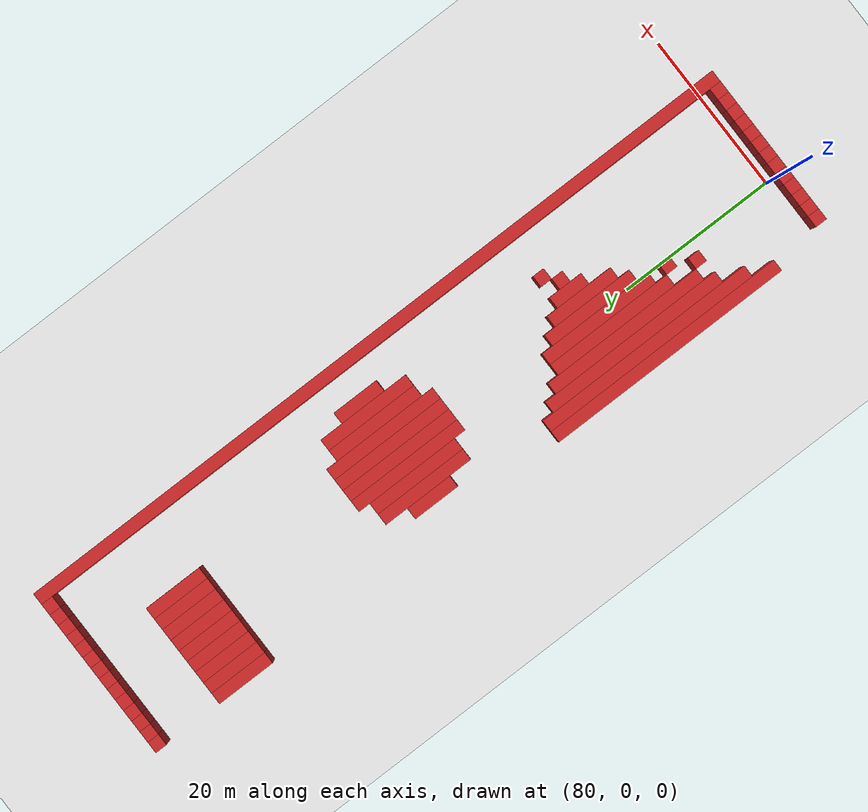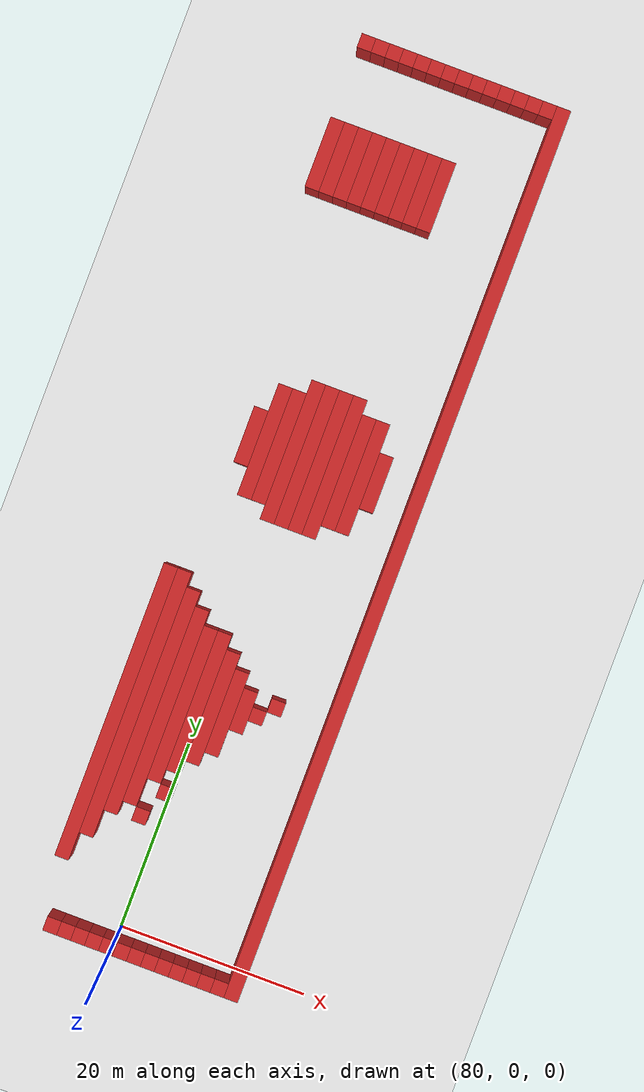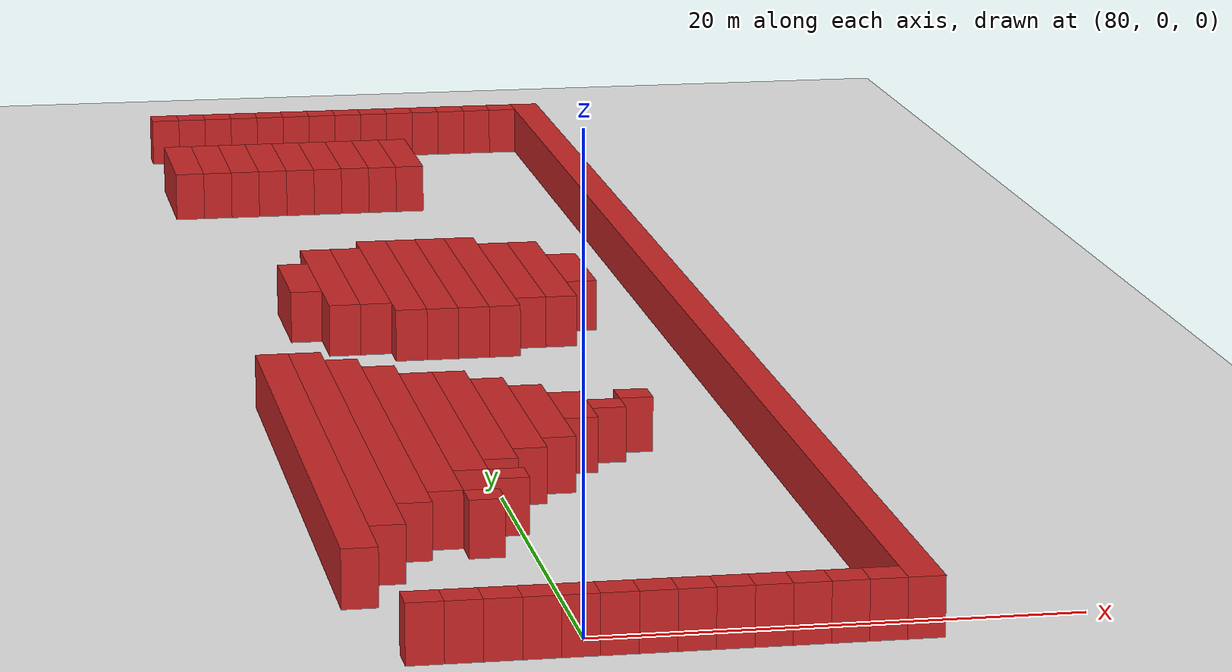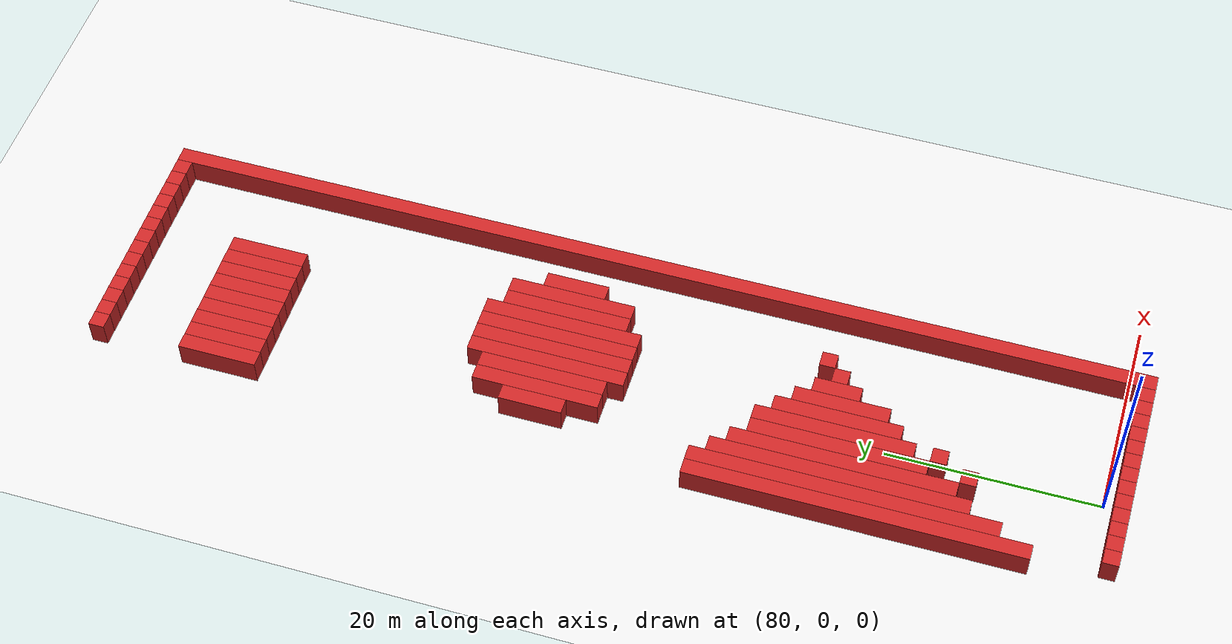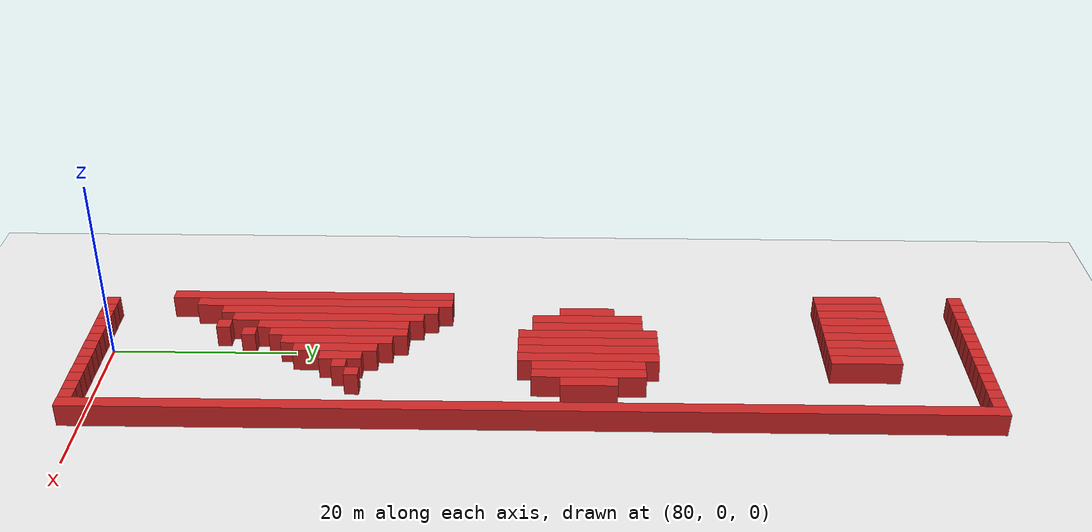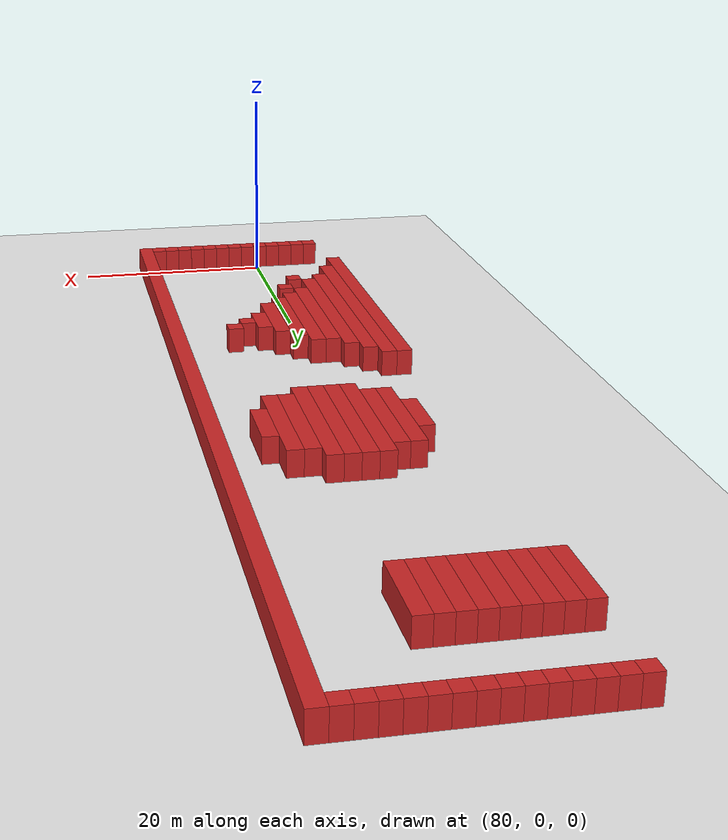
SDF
<sdf version="1.4">
 <world name="1_wall">
  <model name="ground_plane">
   <static>1</static>
   <link name="link">
    <collision name="collision">
     <geometry><plane><normal>0 0 1</normal><size>1000 1000</size></plane></geometry>
     <surface><friction><ode><mu>100</mu><mu2>50</mu2></ode></friction></surface>
    </collision>
    <visual name="visual">
     <cast_shadows>0</cast_shadows>
     <geometry><plane><normal>0 0 1</normal><size>10000 10000</size></plane></geometry>
     <material>
      <script><uri>file://media/materials/scripts/gazebo.material</uri><name>Gazebo/White</name></script>
     </material>
    </visual>
    <velocity_decay><linear>0</linear><angular>0</angular></velocity_decay>
   </link>
  </model>
  <model name="Wall_183">
   <static>1</static>
   <link name="Wall_183">
    <collision name="Wall_Collision_183">
     <geometry><box><size>31.5 1.5 2.5</size></box></geometry>
     <pose>0 0 1.25 0 -0 0</pose>
    </collision>
    <visual name="Wall_Visual_183">
     <pose>0 0 1.25 0 -0 0</pose>
     <geometry><box><size>31.5 1.5 2.5</size></box></geometry>
     <material>
      <script><uri>file://media/materials/scripts/gazebo.material</uri><name>Gazebo/Red</name></script>
     </material>
    </visual>
    <velocity_decay><linear>0</linear><angular>0</angular></velocity_decay>
    <pose>72.0 21.0 0 0 0 1.5707963267948966</pose>
   </link>
  </model>
  <model name="Wall_184">
   <static>1</static>
   <link name="Wall_184">
    <collision name="Wall_Collision_184">
     <geometry><box><size>7.5 1.5 2.5</size></box></geometry>
     <pose>0 0 1.25 0 -0 0</pose>
    </collision>
    <visual name="Wall_Visual_184">
     <pose>0 0 1.25 0 -0 0</pose>
     <geometry><box><size>7.5 1.5 2.5</size></box></geometry>
     <material>
      <script><uri>file://media/materials/scripts/gazebo.material</uri><name>Gazebo/Red</name></script>
     </material>
    </visual>
    <velocity_decay><linear>0</linear><angular>0</angular></velocity_decay>
    <pose>72.0 81.0 0 0 0 1.5707963267948966</pose>
   </link>
  </model>
  <model name="Wall_185">
   <static>1</static>
   <link name="Wall_185">
    <collision name="Wall_Collision_185">
     <geometry><box><size>1.5 1.5 2.5</size></box></geometry>
     <pose>0 0 1.25 0 -0 0</pose>
    </collision>
    <visual name="Wall_Visual_185">
     <pose>0 0 1.25 0 -0 0</pose>
     <geometry><box><size>1.5 1.5 2.5</size></box></geometry>
     <material>
      <script><uri>file://media/materials/scripts/gazebo.material</uri><name>Gazebo/Red</name></script>
     </material>
    </visual>
    <velocity_decay><linear>0</linear><angular>0</angular></velocity_decay>
    <pose>72.0 93.0 0 0 0 1.5707963267948966</pose>
   </link>
  </model>
  <model name="Wall_186">
   <static>1</static>
   <link name="Wall_186">
    <collision name="Wall_Collision_186">
     <geometry><box><size>1.5 1.5 2.5</size></box></geometry>
     <pose>0 0 1.25 0 -0 0</pose>
    </collision>
    <visual name="Wall_Visual_186">
     <pose>0 0 1.25 0 -0 0</pose>
     <geometry><box><size>1.5 1.5 2.5</size></box></geometry>
     <material>
      <script><uri>file://media/materials/scripts/gazebo.material</uri><name>Gazebo/Red</name></script>
     </material>
    </visual>
    <velocity_decay><linear>0</linear><angular>0</angular></velocity_decay>
    <pose>73.5 -1.5 0 0 0 1.5707963267948966</pose>
   </link>
  </model>
  <model name="Wall_187">
   <static>1</static>
   <link name="Wall_187">
    <collision name="Wall_Collision_187">
     <geometry><box><size>28.5 1.5 2.5</size></box></geometry>
     <pose>0 0 1.25 0 -0 0</pose>
    </collision>
    <visual name="Wall_Visual_187">
     <pose>0 0 1.25 0 -0 0</pose>
     <geometry><box><size>28.5 1.5 2.5</size></box></geometry>
     <material>
      <script><uri>file://media/materials/scripts/gazebo.material</uri><name>Gazebo/Red</name></script>
     </material>
    </visual>
    <velocity_decay><linear>0</linear><angular>0</angular></velocity_decay>
    <pose>73.5 22.5 0 0 0 1.5707963267948966</pose>
   </link>
  </model>
  <model name="Wall_188">
   <static>1</static>
   <link name="Wall_188">
    <collision name="Wall_Collision_188">
     <geometry><box><size>7.5 1.5 2.5</size></box></geometry>
     <pose>0 0 1.25 0 -0 0</pose>
    </collision>
    <visual name="Wall_Visual_188">
     <pose>0 0 1.25 0 -0 0</pose>
     <geometry><box><size>7.5 1.5 2.5</size></box></geometry>
     <material>
      <script><uri>file://media/materials/scripts/gazebo.material</uri><name>Gazebo/Red</name></script>
     </material>
    </visual>
    <velocity_decay><linear>0</linear><angular>0</angular></velocity_decay>
    <pose>73.5 81.0 0 0 0 1.5707963267948966</pose>
   </link>
  </model>
  <model name="Wall_189">
   <static>1</static>
   <link name="Wall_189">
    <collision name="Wall_Collision_189">
     <geometry><box><size>1.5 1.5 2.5</size></box></geometry>
     <pose>0 0 1.25 0 -0 0</pose>
    </collision>
    <visual name="Wall_Visual_189">
     <pose>0 0 1.25 0 -0 0</pose>
     <geometry><box><size>1.5 1.5 2.5</size></box></geometry>
     <material>
      <script><uri>file://media/materials/scripts/gazebo.material</uri><name>Gazebo/Red</name></script>
     </material>
    </visual>
    <velocity_decay><linear>0</linear><angular>0</angular></velocity_decay>
    <pose>73.5 93.0 0 0 0 1.5707963267948966</pose>
   </link>
  </model>
  <model name="Wall_190">
   <static>1</static>
   <link name="Wall_190">
    <collision name="Wall_Collision_190">
     <geometry><box><size>1.5 1.5 2.5</size></box></geometry>
     <pose>0 0 1.25 0 -0 0</pose>
    </collision>
    <visual name="Wall_Visual_190">
     <pose>0 0 1.25 0 -0 0</pose>
     <geometry><box><size>1.5 1.5 2.5</size></box></geometry>
     <material>
      <script><uri>file://media/materials/scripts/gazebo.material</uri><name>Gazebo/Red</name></script>
     </material>
    </visual>
    <velocity_decay><linear>0</linear><angular>0</angular></velocity_decay>
    <pose>75.0 -1.5 0 0 0 1.5707963267948966</pose>
   </link>
  </model>
  <model name="Wall_191">
   <static>1</static>
   <link name="Wall_191">
    <collision name="Wall_Collision_191">
     <geometry><box><size>24.0 1.5 2.5</size></box></geometry>
     <pose>0 0 1.25 0 -0 0</pose>
    </collision>
    <visual name="Wall_Visual_191">
     <pose>0 0 1.25 0 -0 0</pose>
     <geometry><box><size>24.0 1.5 2.5</size></box></geometry>
     <material>
      <script><uri>file://media/materials/scripts/gazebo.material</uri><name>Gazebo/Red</name></script>
     </material>
    </visual>
    <velocity_decay><linear>0</linear><angular>0</angular></velocity_decay>
    <pose>75.0 23.25 0 0 0 1.5707963267948966</pose>
   </link>
  </model>
  <model name="Wall_192">
   <static>1</static>
   <link name="Wall_192">
    <collision name="Wall_Collision_192">
     <geometry><box><size>6.0 1.5 2.5</size></box></geometry>
     <pose>0 0 1.25 0 -0 0</pose>
    </collision>
    <visual name="Wall_Visual_192">
     <pose>0 0 1.25 0 -0 0</pose>
     <geometry><box><size>6.0 1.5 2.5</size></box></geometry>
     <material>
      <script><uri>file://media/materials/scripts/gazebo.material</uri><name>Gazebo/Red</name></script>
     </material>
    </visual>
    <velocity_decay><linear>0</linear><angular>0</angular></velocity_decay>
    <pose>75.0 51.75 0 0 0 1.5707963267948966</pose>
   </link>
  </model>
  <model name="Wall_193">
   <static>1</static>
   <link name="Wall_193">
    <collision name="Wall_Collision_193">
     <geometry><box><size>7.5 1.5 2.5</size></box></geometry>
     <pose>0 0 1.25 0 -0 0</pose>
    </collision>
    <visual name="Wall_Visual_193">
     <pose>0 0 1.25 0 -0 0</pose>
     <geometry><box><size>7.5 1.5 2.5</size></box></geometry>
     <material>
      <script><uri>file://media/materials/scripts/gazebo.material</uri><name>Gazebo/Red</name></script>
     </material>
    </visual>
    <velocity_decay><linear>0</linear><angular>0</angular></velocity_decay>
    <pose>75.0 81.0 0 0 0 1.5707963267948966</pose>
   </link>
  </model>
  <model name="Wall_194">
   <static>1</static>
   <link name="Wall_194">
    <collision name="Wall_Collision_194">
     <geometry><box><size>1.5 1.5 2.5</size></box></geometry>
     <pose>0 0 1.25 0 -0 0</pose>
    </collision>
    <visual name="Wall_Visual_194">
     <pose>0 0 1.25 0 -0 0</pose>
     <geometry><box><size>1.5 1.5 2.5</size></box></geometry>
     <material>
      <script><uri>file://media/materials/scripts/gazebo.material</uri><name>Gazebo/Red</name></script>
     </material>
    </visual>
    <velocity_decay><linear>0</linear><angular>0</angular></velocity_decay>
    <pose>75.0 93.0 0 0 0 1.5707963267948966</pose>
   </link>
  </model>
  <model name="Wall_195">
   <static>1</static>
   <link name="Wall_195">
    <collision name="Wall_Collision_195">
     <geometry><box><size>1.5 1.5 2.5</size></box></geometry>
     <pose>0 0 1.25 0 -0 0</pose>
    </collision>
    <visual name="Wall_Visual_195">
     <pose>0 0 1.25 0 -0 0</pose>
     <geometry><box><size>1.5 1.5 2.5</size></box></geometry>
     <material>
      <script><uri>file://media/materials/scripts/gazebo.material</uri><name>Gazebo/Red</name></script>
     </material>
    </visual>
    <velocity_decay><linear>0</linear><angular>0</angular></velocity_decay>
    <pose>76.5 -1.5 0 0 0 1.5707963267948966</pose>
   </link>
  </model>
  <model name="Wall_196">
   <static>1</static>
   <link name="Wall_196">
    <collision name="Wall_Collision_196">
     <geometry><box><size>21.0 1.5 2.5</size></box></geometry>
     <pose>0 0 1.25 0 -0 0</pose>
    </collision>
    <visual name="Wall_Visual_196">
     <pose>0 0 1.25 0 -0 0</pose>
     <geometry><box><size>21.0 1.5 2.5</size></box></geometry>
     <material>
      <script><uri>file://media/materials/scripts/gazebo.material</uri><name>Gazebo/Red</name></script>
     </material>
    </visual>
    <velocity_decay><linear>0</linear><angular>0</angular></velocity_decay>
    <pose>76.5 23.25 0 0 0 1.5707963267948966</pose>
   </link>
  </model>
  <model name="Wall_197">
   <static>1</static>
   <link name="Wall_197">
    <collision name="Wall_Collision_197">
     <geometry><box><size>12.0 1.5 2.5</size></box></geometry>
     <pose>0 0 1.25 0 -0 0</pose>
    </collision>
    <visual name="Wall_Visual_197">
     <pose>0 0 1.25 0 -0 0</pose>
     <geometry><box><size>12.0 1.5 2.5</size></box></geometry>
     <material>
      <script><uri>file://media/materials/scripts/gazebo.material</uri><name>Gazebo/Red</name></script>
     </material>
    </visual>
    <velocity_decay><linear>0</linear><angular>0</angular></velocity_decay>
    <pose>76.5 51.75 0 0 0 1.5707963267948966</pose>
   </link>
  </model>
  <model name="Wall_198">
   <static>1</static>
   <link name="Wall_198">
    <collision name="Wall_Collision_198">
     <geometry><box><size>7.5 1.5 2.5</size></box></geometry>
     <pose>0 0 1.25 0 -0 0</pose>
    </collision>
    <visual name="Wall_Visual_198">
     <pose>0 0 1.25 0 -0 0</pose>
     <geometry><box><size>7.5 1.5 2.5</size></box></geometry>
     <material>
      <script><uri>file://media/materials/scripts/gazebo.material</uri><name>Gazebo/Red</name></script>
     </material>
    </visual>
    <velocity_decay><linear>0</linear><angular>0</angular></velocity_decay>
    <pose>76.5 81.0 0 0 0 1.5707963267948966</pose>
   </link>
  </model>
  <model name="Wall_199">
   <static>1</static>
   <link name="Wall_199">
    <collision name="Wall_Collision_199">
     <geometry><box><size>1.5 1.5 2.5</size></box></geometry>
     <pose>0 0 1.25 0 -0 0</pose>
    </collision>
    <visual name="Wall_Visual_199">
     <pose>0 0 1.25 0 -0 0</pose>
     <geometry><box><size>1.5 1.5 2.5</size></box></geometry>
     <material>
      <script><uri>file://media/materials/scripts/gazebo.material</uri><name>Gazebo/Red</name></script>
     </material>
    </visual>
    <velocity_decay><linear>0</linear><angular>0</angular></velocity_decay>
    <pose>76.5 93.0 0 0 0 1.5707963267948966</pose>
   </link>
  </model>
  <model name="Wall_200">
   <static>1</static>
   <link name="Wall_200">
    <collision name="Wall_Collision_200">
     <geometry><box><size>1.5 1.5 2.5</size></box></geometry>
     <pose>0 0 1.25 0 -0 0</pose>
    </collision>
    <visual name="Wall_Visual_200">
     <pose>0 0 1.25 0 -0 0</pose>
     <geometry><box><size>1.5 1.5 2.5</size></box></geometry>
     <material>
      <script><uri>file://media/materials/scripts/gazebo.material</uri><name>Gazebo/Red</name></script>
     </material>
    </visual>
    <velocity_decay><linear>0</linear><angular>0</angular></velocity_decay>
    <pose>78.0 -1.5 0 0 0 1.5707963267948966</pose>
   </link>
  </model>
  <model name="Wall_201">
   <static>1</static>
   <link name="Wall_201">
    <collision name="Wall_Collision_201">
     <geometry><box><size>1.5 1.5 2.5</size></box></geometry>
     <pose>0 0 1.25 0 -0 0</pose>
    </collision>
    <visual name="Wall_Visual_201">
     <pose>0 0 1.25 0 -0 0</pose>
     <geometry><box><size>1.5 1.5 2.5</size></box></geometry>
     <material>
      <script><uri>file://media/materials/scripts/gazebo.material</uri><name>Gazebo/Red</name></script>
     </material>
    </visual>
    <velocity_decay><linear>0</linear><angular>0</angular></velocity_decay>
    <pose>78.0 12.0 0 0 0 1.5707963267948966</pose>
   </link>
  </model>
  <model name="Wall_202">
   <static>1</static>
   <link name="Wall_202">
    <collision name="Wall_Collision_202">
     <geometry><box><size>16.5 1.5 2.5</size></box></geometry>
     <pose>0 0 1.25 0 -0 0</pose>
    </collision>
    <visual name="Wall_Visual_202">
     <pose>0 0 1.25 0 -0 0</pose>
     <geometry><box><size>16.5 1.5 2.5</size></box></geometry>
     <material>
      <script><uri>file://media/materials/scripts/gazebo.material</uri><name>Gazebo/Red</name></script>
     </material>
    </visual>
    <velocity_decay><linear>0</linear><angular>0</angular></velocity_decay>
    <pose>78.0 24.0 0 0 0 1.5707963267948966</pose>
   </link>
  </model>
  <model name="Wall_203">
   <static>1</static>
   <link name="Wall_203">
    <collision name="Wall_Collision_203">
     <geometry><box><size>12.0 1.5 2.5</size></box></geometry>
     <pose>0 0 1.25 0 -0 0</pose>
    </collision>
    <visual name="Wall_Visual_203">
     <pose>0 0 1.25 0 -0 0</pose>
     <geometry><box><size>12.0 1.5 2.5</size></box></geometry>
     <material>
      <script><uri>file://media/materials/scripts/gazebo.material</uri><name>Gazebo/Red</name></script>
     </material>
    </visual>
    <velocity_decay><linear>0</linear><angular>0</angular></velocity_decay>
    <pose>78.0 51.75 0 0 0 1.5707963267948966</pose>
   </link>
  </model>
  <model name="Wall_204">
   <static>1</static>
   <link name="Wall_204">
    <collision name="Wall_Collision_204">
     <geometry><box><size>7.5 1.5 2.5</size></box></geometry>
     <pose>0 0 1.25 0 -0 0</pose>
    </collision>
    <visual name="Wall_Visual_204">
     <pose>0 0 1.25 0 -0 0</pose>
     <geometry><box><size>7.5 1.5 2.5</size></box></geometry>
     <material>
      <script><uri>file://media/materials/scripts/gazebo.material</uri><name>Gazebo/Red</name></script>
     </material>
    </visual>
    <velocity_decay><linear>0</linear><angular>0</angular></velocity_decay>
    <pose>78.0 81.0 0 0 0 1.5707963267948966</pose>
   </link>
  </model>
  <model name="Wall_205">
   <static>1</static>
   <link name="Wall_205">
    <collision name="Wall_Collision_205">
     <geometry><box><size>1.5 1.5 2.5</size></box></geometry>
     <pose>0 0 1.25 0 -0 0</pose>
    </collision>
    <visual name="Wall_Visual_205">
     <pose>0 0 1.25 0 -0 0</pose>
     <geometry><box><size>1.5 1.5 2.5</size></box></geometry>
     <material>
      <script><uri>file://media/materials/scripts/gazebo.material</uri><name>Gazebo/Red</name></script>
     </material>
    </visual>
    <velocity_decay><linear>0</linear><angular>0</angular></velocity_decay>
    <pose>78.0 93.0 0 0 0 1.5707963267948966</pose>
   </link>
  </model>
  <model name="Wall_206">
   <static>1</static>
   <link name="Wall_206">
    <collision name="Wall_Collision_206">
     <geometry><box><size>1.5 1.5 2.5</size></box></geometry>
     <pose>0 0 1.25 0 -0 0</pose>
    </collision>
    <visual name="Wall_Visual_206">
     <pose>0 0 1.25 0 -0 0</pose>
     <geometry><box><size>1.5 1.5 2.5</size></box></geometry>
     <material>
      <script><uri>file://media/materials/scripts/gazebo.material</uri><name>Gazebo/Red</name></script>
     </material>
    </visual>
    <velocity_decay><linear>0</linear><angular>0</angular></velocity_decay>
    <pose>79.5 -1.5 0 0 0 1.5707963267948966</pose>
   </link>
  </model>
  <model name="Wall_207">
   <static>1</static>
   <link name="Wall_207">
    <collision name="Wall_Collision_207">
     <geometry><box><size>1.5 1.5 2.5</size></box></geometry>
     <pose>0 0 1.25 0 -0 0</pose>
    </collision>
    <visual name="Wall_Visual_207">
     <pose>0 0 1.25 0 -0 0</pose>
     <geometry><box><size>1.5 1.5 2.5</size></box></geometry>
     <material>
      <script><uri>file://media/materials/scripts/gazebo.material</uri><name>Gazebo/Red</name></script>
     </material>
    </visual>
    <velocity_decay><linear>0</linear><angular>0</angular></velocity_decay>
    <pose>79.5 15.0 0 0 0 1.5707963267948966</pose>
   </link>
  </model>
  <model name="Wall_208">
   <static>1</static>
   <link name="Wall_208">
    <collision name="Wall_Collision_208">
     <geometry><box><size>15.0 1.5 2.5</size></box></geometry>
     <pose>0 0 1.25 0 -0 0</pose>
    </collision>
    <visual name="Wall_Visual_208">
     <pose>0 0 1.25 0 -0 0</pose>
     <geometry><box><size>15.0 1.5 2.5</size></box></geometry>
     <material>
      <script><uri>file://media/materials/scripts/gazebo.material</uri><name>Gazebo/Red</name></script>
     </material>
    </visual>
    <velocity_decay><linear>0</linear><angular>0</angular></velocity_decay>
    <pose>79.5 24.75 0 0 0 1.5707963267948966</pose>
   </link>
  </model>
  <model name="Wall_209">
   <static>1</static>
   <link name="Wall_209">
    <collision name="Wall_Collision_209">
     <geometry><box><size>15.0 1.5 2.5</size></box></geometry>
     <pose>0 0 1.25 0 -0 0</pose>
    </collision>
    <visual name="Wall_Visual_209">
     <pose>0 0 1.25 0 -0 0</pose>
     <geometry><box><size>15.0 1.5 2.5</size></box></geometry>
     <material>
      <script><uri>file://media/materials/scripts/gazebo.material</uri><name>Gazebo/Red</name></script>
     </material>
    </visual>
    <velocity_decay><linear>0</linear><angular>0</angular></velocity_decay>
    <pose>79.5 51.75 0 0 0 1.5707963267948966</pose>
   </link>
  </model>
  <model name="Wall_210">
   <static>1</static>
   <link name="Wall_210">
    <collision name="Wall_Collision_210">
     <geometry><box><size>7.5 1.5 2.5</size></box></geometry>
     <pose>0 0 1.25 0 -0 0</pose>
    </collision>
    <visual name="Wall_Visual_210">
     <pose>0 0 1.25 0 -0 0</pose>
     <geometry><box><size>7.5 1.5 2.5</size></box></geometry>
     <material>
      <script><uri>file://media/materials/scripts/gazebo.material</uri><name>Gazebo/Red</name></script>
     </material>
    </visual>
    <velocity_decay><linear>0</linear><angular>0</angular></velocity_decay>
    <pose>79.5 81.0 0 0 0 1.5707963267948966</pose>
   </link>
  </model>
  <model name="Wall_211">
   <static>1</static>
   <link name="Wall_211">
    <collision name="Wall_Collision_211">
     <geometry><box><size>1.5 1.5 2.5</size></box></geometry>
     <pose>0 0 1.25 0 -0 0</pose>
    </collision>
    <visual name="Wall_Visual_211">
     <pose>0 0 1.25 0 -0 0</pose>
     <geometry><box><size>1.5 1.5 2.5</size></box></geometry>
     <material>
      <script><uri>file://media/materials/scripts/gazebo.material</uri><name>Gazebo/Red</name></script>
     </material>
    </visual>
    <velocity_decay><linear>0</linear><angular>0</angular></velocity_decay>
    <pose>79.5 93.0 0 0 0 1.5707963267948966</pose>
   </link>
  </model>
  <model name="Wall_212">
   <static>1</static>
   <link name="Wall_212">
    <collision name="Wall_Collision_212">
     <geometry><box><size>1.5 1.5 2.5</size></box></geometry>
     <pose>0 0 1.25 0 -0 0</pose>
    </collision>
    <visual name="Wall_Visual_212">
     <pose>0 0 1.25 0 -0 0</pose>
     <geometry><box><size>1.5 1.5 2.5</size></box></geometry>
     <material>
      <script><uri>file://media/materials/scripts/gazebo.material</uri><name>Gazebo/Red</name></script>
     </material>
    </visual>
    <velocity_decay><linear>0</linear><angular>0</angular></velocity_decay>
    <pose>81.0 -1.5 0 0 0 1.5707963267948966</pose>
   </link>
  </model>
  <model name="Wall_213">
   <static>1</static>
   <link name="Wall_213">
    <collision name="Wall_Collision_213">
     <geometry><box><size>12.0 1.5 2.5</size></box></geometry>
     <pose>0 0 1.25 0 -0 0</pose>
    </collision>
    <visual name="Wall_Visual_213">
     <pose>0 0 1.25 0 -0 0</pose>
     <geometry><box><size>12.0 1.5 2.5</size></box></geometry>
     <material>
      <script><uri>file://media/materials/scripts/gazebo.material</uri><name>Gazebo/Red</name></script>
     </material>
    </visual>
    <velocity_decay><linear>0</linear><angular>0</angular></velocity_decay>
    <pose>81.0 24.75 0 0 0 1.5707963267948966</pose>
   </link>
  </model>
  <model name="Wall_214">
   <static>1</static>
   <link name="Wall_214">
    <collision name="Wall_Collision_214">
     <geometry><box><size>15.0 1.5 2.5</size></box></geometry>
     <pose>0 0 1.25 0 -0 0</pose>
    </collision>
    <visual name="Wall_Visual_214">
     <pose>0 0 1.25 0 -0 0</pose>
     <geometry><box><size>15.0 1.5 2.5</size></box></geometry>
     <material>
      <script><uri>file://media/materials/scripts/gazebo.material</uri><name>Gazebo/Red</name></script>
     </material>
    </visual>
    <velocity_decay><linear>0</linear><angular>0</angular></velocity_decay>
    <pose>81.0 51.75 0 0 0 1.5707963267948966</pose>
   </link>
  </model>
  <model name="Wall_215">
   <static>1</static>
   <link name="Wall_215">
    <collision name="Wall_Collision_215">
     <geometry><box><size>7.5 1.5 2.5</size></box></geometry>
     <pose>0 0 1.25 0 -0 0</pose>
    </collision>
    <visual name="Wall_Visual_215">
     <pose>0 0 1.25 0 -0 0</pose>
     <geometry><box><size>7.5 1.5 2.5</size></box></geometry>
     <material>
      <script><uri>file://media/materials/scripts/gazebo.material</uri><name>Gazebo/Red</name></script>
     </material>
    </visual>
    <velocity_decay><linear>0</linear><angular>0</angular></velocity_decay>
    <pose>81.0 81.0 0 0 0 1.5707963267948966</pose>
   </link>
  </model>
  <model name="Wall_216">
   <static>1</static>
   <link name="Wall_216">
    <collision name="Wall_Collision_216">
     <geometry><box><size>1.5 1.5 2.5</size></box></geometry>
     <pose>0 0 1.25 0 -0 0</pose>
    </collision>
    <visual name="Wall_Visual_216">
     <pose>0 0 1.25 0 -0 0</pose>
     <geometry><box><size>1.5 1.5 2.5</size></box></geometry>
     <material>
      <script><uri>file://media/materials/scripts/gazebo.material</uri><name>Gazebo/Red</name></script>
     </material>
    </visual>
    <velocity_decay><linear>0</linear><angular>0</angular></velocity_decay>
    <pose>81.0 93.0 0 0 0 1.5707963267948966</pose>
   </link>
  </model>
  <model name="Wall_217">
   <static>1</static>
   <link name="Wall_217">
    <collision name="Wall_Collision_217">
     <geometry><box><size>1.5 1.5 2.5</size></box></geometry>
     <pose>0 0 1.25 0 -0 0</pose>
    </collision>
    <visual name="Wall_Visual_217">
     <pose>0 0 1.25 0 -0 0</pose>
     <geometry><box><size>1.5 1.5 2.5</size></box></geometry>
     <material>
      <script><uri>file://media/materials/scripts/gazebo.material</uri><name>Gazebo/Red</name></script>
     </material>
    </visual>
    <velocity_decay><linear>0</linear><angular>0</angular></velocity_decay>
    <pose>82.5 -1.5 0 0 0 1.5707963267948966</pose>
   </link>
  </model>
  <model name="Wall_218">
   <static>1</static>
   <link name="Wall_218">
    <collision name="Wall_Collision_218">
     <geometry><box><size>9.0 1.5 2.5</size></box></geometry>
     <pose>0 0 1.25 0 -0 0</pose>
    </collision>
    <visual name="Wall_Visual_218">
     <pose>0 0 1.25 0 -0 0</pose>
     <geometry><box><size>9.0 1.5 2.5</size></box></geometry>
     <material>
      <script><uri>file://media/materials/scripts/gazebo.material</uri><name>Gazebo/Red</name></script>
     </material>
    </visual>
    <velocity_decay><linear>0</linear><angular>0</angular></velocity_decay>
    <pose>82.5 24.75 0 0 0 1.5707963267948966</pose>
   </link>
  </model>
  <model name="Wall_219">
   <static>1</static>
   <link name="Wall_219">
    <collision name="Wall_Collision_219">
     <geometry><box><size>15.0 1.5 2.5</size></box></geometry>
     <pose>0 0 1.25 0 -0 0</pose>
    </collision>
    <visual name="Wall_Visual_219">
     <pose>0 0 1.25 0 -0 0</pose>
     <geometry><box><size>15.0 1.5 2.5</size></box></geometry>
     <material>
      <script><uri>file://media/materials/scripts/gazebo.material</uri><name>Gazebo/Red</name></script>
     </material>
    </visual>
    <velocity_decay><linear>0</linear><angular>0</angular></velocity_decay>
    <pose>82.5 51.75 0 0 0 1.5707963267948966</pose>
   </link>
  </model>
  <model name="Wall_220">
   <static>1</static>
   <link name="Wall_220">
    <collision name="Wall_Collision_220">
     <geometry><box><size>7.5 1.5 2.5</size></box></geometry>
     <pose>0 0 1.25 0 -0 0</pose>
    </collision>
    <visual name="Wall_Visual_220">
     <pose>0 0 1.25 0 -0 0</pose>
     <geometry><box><size>7.5 1.5 2.5</size></box></geometry>
     <material>
      <script><uri>file://media/materials/scripts/gazebo.material</uri><name>Gazebo/Red</name></script>
     </material>
    </visual>
    <velocity_decay><linear>0</linear><angular>0</angular></velocity_decay>
    <pose>82.5 81.0 0 0 0 1.5707963267948966</pose>
   </link>
  </model>
  <model name="Wall_221">
   <static>1</static>
   <link name="Wall_221">
    <collision name="Wall_Collision_221">
     <geometry><box><size>1.5 1.5 2.5</size></box></geometry>
     <pose>0 0 1.25 0 -0 0</pose>
    </collision>
    <visual name="Wall_Visual_221">
     <pose>0 0 1.25 0 -0 0</pose>
     <geometry><box><size>1.5 1.5 2.5</size></box></geometry>
     <material>
      <script><uri>file://media/materials/scripts/gazebo.material</uri><name>Gazebo/Red</name></script>
     </material>
    </visual>
    <velocity_decay><linear>0</linear><angular>0</angular></velocity_decay>
    <pose>82.5 93.0 0 0 0 1.5707963267948966</pose>
   </link>
  </model>
  <model name="Wall_222">
   <static>1</static>
   <link name="Wall_222">
    <collision name="Wall_Collision_222">
     <geometry><box><size>1.5 1.5 2.5</size></box></geometry>
     <pose>0 0 1.25 0 -0 0</pose>
    </collision>
    <visual name="Wall_Visual_222">
     <pose>0 0 1.25 0 -0 0</pose>
     <geometry><box><size>1.5 1.5 2.5</size></box></geometry>
     <material>
      <script><uri>file://media/materials/scripts/gazebo.material</uri><name>Gazebo/Red</name></script>
     </material>
    </visual>
    <velocity_decay><linear>0</linear><angular>0</angular></velocity_decay>
    <pose>84.0 -1.5 0 0 0 1.5707963267948966</pose>
   </link>
  </model>
  <model name="Wall_223">
   <static>1</static>
   <link name="Wall_223">
    <collision name="Wall_Collision_223">
     <geometry><box><size>4.5 1.5 2.5</size></box></geometry>
     <pose>0 0 1.25 0 -0 0</pose>
    </collision>
    <visual name="Wall_Visual_223">
     <pose>0 0 1.25 0 -0 0</pose>
     <geometry><box><size>4.5 1.5 2.5</size></box></geometry>
     <material>
      <script><uri>file://media/materials/scripts/gazebo.material</uri><name>Gazebo/Red</name></script>
     </material>
    </visual>
    <velocity_decay><linear>0</linear><angular>0</angular></velocity_decay>
    <pose>84.0 25.5 0 0 0 1.5707963267948966</pose>
   </link>
  </model>
  <model name="Wall_224">
   <static>1</static>
   <link name="Wall_224">
    <collision name="Wall_Collision_224">
     <geometry><box><size>15.0 1.5 2.5</size></box></geometry>
     <pose>0 0 1.25 0 -0 0</pose>
    </collision>
    <visual name="Wall_Visual_224">
     <pose>0 0 1.25 0 -0 0</pose>
     <geometry><box><size>15.0 1.5 2.5</size></box></geometry>
     <material>
      <script><uri>file://media/materials/scripts/gazebo.material</uri><name>Gazebo/Red</name></script>
     </material>
    </visual>
    <velocity_decay><linear>0</linear><angular>0</angular></velocity_decay>
    <pose>84.0 51.75 0 0 0 1.5707963267948966</pose>
   </link>
  </model>
  <model name="Wall_225">
   <static>1</static>
   <link name="Wall_225">
    <collision name="Wall_Collision_225">
     <geometry><box><size>7.5 1.5 2.5</size></box></geometry>
     <pose>0 0 1.25 0 -0 0</pose>
    </collision>
    <visual name="Wall_Visual_225">
     <pose>0 0 1.25 0 -0 0</pose>
     <geometry><box><size>7.5 1.5 2.5</size></box></geometry>
     <material>
      <script><uri>file://media/materials/scripts/gazebo.material</uri><name>Gazebo/Red</name></script>
     </material>
    </visual>
    <velocity_decay><linear>0</linear><angular>0</angular></velocity_decay>
    <pose>84.0 81.0 0 0 0 1.5707963267948966</pose>
   </link>
  </model>
  <model name="Wall_226">
   <static>1</static>
   <link name="Wall_226">
    <collision name="Wall_Collision_226">
     <geometry><box><size>1.5 1.5 2.5</size></box></geometry>
     <pose>0 0 1.25 0 -0 0</pose>
    </collision>
    <visual name="Wall_Visual_226">
     <pose>0 0 1.25 0 -0 0</pose>
     <geometry><box><size>1.5 1.5 2.5</size></box></geometry>
     <material>
      <script><uri>file://media/materials/scripts/gazebo.material</uri><name>Gazebo/Red</name></script>
     </material>
    </visual>
    <velocity_decay><linear>0</linear><angular>0</angular></velocity_decay>
    <pose>84.0 93.0 0 0 0 1.5707963267948966</pose>
   </link>
  </model>
  <model name="Wall_227">
   <static>1</static>
   <link name="Wall_227">
    <collision name="Wall_Collision_227">
     <geometry><box><size>1.5 1.5 2.5</size></box></geometry>
     <pose>0 0 1.25 0 -0 0</pose>
    </collision>
    <visual name="Wall_Visual_227">
     <pose>0 0 1.25 0 -0 0</pose>
     <geometry><box><size>1.5 1.5 2.5</size></box></geometry>
     <material>
      <script><uri>file://media/materials/scripts/gazebo.material</uri><name>Gazebo/Red</name></script>
     </material>
    </visual>
    <velocity_decay><linear>0</linear><angular>0</angular></velocity_decay>
    <pose>85.5 -1.5 0 0 0 1.5707963267948966</pose>
   </link>
  </model>
  <model name="Wall_228">
   <static>1</static>
   <link name="Wall_228">
    <collision name="Wall_Collision_228">
     <geometry><box><size>1.5 1.5 2.5</size></box></geometry>
     <pose>0 0 1.25 0 -0 0</pose>
    </collision>
    <visual name="Wall_Visual_228">
     <pose>0 0 1.25 0 -0 0</pose>
     <geometry><box><size>1.5 1.5 2.5</size></box></geometry>
     <material>
      <script><uri>file://media/materials/scripts/gazebo.material</uri><name>Gazebo/Red</name></script>
     </material>
    </visual>
    <velocity_decay><linear>0</linear><angular>0</angular></velocity_decay>
    <pose>85.5 25.5 0 0 0 1.5707963267948966</pose>
   </link>
  </model>
  <model name="Wall_229">
   <static>1</static>
   <link name="Wall_229">
    <collision name="Wall_Collision_229">
     <geometry><box><size>12.0 1.5 2.5</size></box></geometry>
     <pose>0 0 1.25 0 -0 0</pose>
    </collision>
    <visual name="Wall_Visual_229">
     <pose>0 0 1.25 0 -0 0</pose>
     <geometry><box><size>12.0 1.5 2.5</size></box></geometry>
     <material>
      <script><uri>file://media/materials/scripts/gazebo.material</uri><name>Gazebo/Red</name></script>
     </material>
    </visual>
    <velocity_decay><linear>0</linear><angular>0</angular></velocity_decay>
    <pose>85.5 51.75 0 0 0 1.5707963267948966</pose>
   </link>
  </model>
  <model name="Wall_230">
   <static>1</static>
   <link name="Wall_230">
    <collision name="Wall_Collision_230">
     <geometry><box><size>1.5 1.5 2.5</size></box></geometry>
     <pose>0 0 1.25 0 -0 0</pose>
    </collision>
    <visual name="Wall_Visual_230">
     <pose>0 0 1.25 0 -0 0</pose>
     <geometry><box><size>1.5 1.5 2.5</size></box></geometry>
     <material>
      <script><uri>file://media/materials/scripts/gazebo.material</uri><name>Gazebo/Red</name></script>
     </material>
    </visual>
    <velocity_decay><linear>0</linear><angular>0</angular></velocity_decay>
    <pose>85.5 93.0 0 0 0 1.5707963267948966</pose>
   </link>
  </model>
  <model name="Wall_231">
   <static>1</static>
   <link name="Wall_231">
    <collision name="Wall_Collision_231">
     <geometry><box><size>1.5 1.5 2.5</size></box></geometry>
     <pose>0 0 1.25 0 -0 0</pose>
    </collision>
    <visual name="Wall_Visual_231">
     <pose>0 0 1.25 0 -0 0</pose>
     <geometry><box><size>1.5 1.5 2.5</size></box></geometry>
     <material>
      <script><uri>file://media/materials/scripts/gazebo.material</uri><name>Gazebo/Red</name></script>
     </material>
    </visual>
    <velocity_decay><linear>0</linear><angular>0</angular></velocity_decay>
    <pose>87.0 -1.5 0 0 0 1.5707963267948966</pose>
   </link>
  </model>
  <model name="Wall_232">
   <static>1</static>
   <link name="Wall_232">
    <collision name="Wall_Collision_232">
     <geometry><box><size>1.5 1.5 2.5</size></box></geometry>
     <pose>0 0 1.25 0 -0 0</pose>
    </collision>
    <visual name="Wall_Visual_232">
     <pose>0 0 1.25 0 -0 0</pose>
     <geometry><box><size>1.5 1.5 2.5</size></box></geometry>
     <material>
      <script><uri>file://media/materials/scripts/gazebo.material</uri><name>Gazebo/Red</name></script>
     </material>
    </visual>
    <velocity_decay><linear>0</linear><angular>0</angular></velocity_decay>
    <pose>87.0 27.0 0 0 0 1.5707963267948966</pose>
   </link>
  </model>
  <model name="Wall_233">
   <static>1</static>
   <link name="Wall_233">
    <collision name="Wall_Collision_233">
     <geometry><box><size>12.0 1.5 2.5</size></box></geometry>
     <pose>0 0 1.25 0 -0 0</pose>
    </collision>
    <visual name="Wall_Visual_233">
     <pose>0 0 1.25 0 -0 0</pose>
     <geometry><box><size>12.0 1.5 2.5</size></box></geometry>
     <material>
      <script><uri>file://media/materials/scripts/gazebo.material</uri><name>Gazebo/Red</name></script>
     </material>
    </visual>
    <velocity_decay><linear>0</linear><angular>0</angular></velocity_decay>
    <pose>87.0 51.75 0 0 0 1.5707963267948966</pose>
   </link>
  </model>
  <model name="Wall_234">
   <static>1</static>
   <link name="Wall_234">
    <collision name="Wall_Collision_234">
     <geometry><box><size>1.5 1.5 2.5</size></box></geometry>
     <pose>0 0 1.25 0 -0 0</pose>
    </collision>
    <visual name="Wall_Visual_234">
     <pose>0 0 1.25 0 -0 0</pose>
     <geometry><box><size>1.5 1.5 2.5</size></box></geometry>
     <material>
      <script><uri>file://media/materials/scripts/gazebo.material</uri><name>Gazebo/Red</name></script>
     </material>
    </visual>
    <velocity_decay><linear>0</linear><angular>0</angular></velocity_decay>
    <pose>87.0 93.0 0 0 0 1.5707963267948966</pose>
   </link>
  </model>
  <model name="Wall_235">
   <static>1</static>
   <link name="Wall_235">
    <collision name="Wall_Collision_235">
     <geometry><box><size>1.5 1.5 2.5</size></box></geometry>
     <pose>0 0 1.25 0 -0 0</pose>
    </collision>
    <visual name="Wall_Visual_235">
     <pose>0 0 1.25 0 -0 0</pose>
     <geometry><box><size>1.5 1.5 2.5</size></box></geometry>
     <material>
      <script><uri>file://media/materials/scripts/gazebo.material</uri><name>Gazebo/Red</name></script>
     </material>
    </visual>
    <velocity_decay><linear>0</linear><angular>0</angular></velocity_decay>
    <pose>88.5 -1.5 0 0 0 1.5707963267948966</pose>
   </link>
  </model>
  <model name="Wall_236">
   <static>1</static>
   <link name="Wall_236">
    <collision name="Wall_Collision_236">
     <geometry><box><size>6.0 1.5 2.5</size></box></geometry>
     <pose>0 0 1.25 0 -0 0</pose>
    </collision>
    <visual name="Wall_Visual_236">
     <pose>0 0 1.25 0 -0 0</pose>
     <geometry><box><size>6.0 1.5 2.5</size></box></geometry>
     <material>
      <script><uri>file://media/materials/scripts/gazebo.material</uri><name>Gazebo/Red</name></script>
     </material>
    </visual>
    <velocity_decay><linear>0</linear><angular>0</angular></velocity_decay>
    <pose>88.5 51.75 0 0 0 1.5707963267948966</pose>
   </link>
  </model>
  <model name="Wall_237">
   <static>1</static>
   <link name="Wall_237">
    <collision name="Wall_Collision_237">
     <geometry><box><size>1.5 1.5 2.5</size></box></geometry>
     <pose>0 0 1.25 0 -0 0</pose>
    </collision>
    <visual name="Wall_Visual_237">
     <pose>0 0 1.25 0 -0 0</pose>
     <geometry><box><size>1.5 1.5 2.5</size></box></geometry>
     <material>
      <script><uri>file://media/materials/scripts/gazebo.material</uri><name>Gazebo/Red</name></script>
     </material>
    </visual>
    <velocity_decay><linear>0</linear><angular>0</angular></velocity_decay>
    <pose>88.5 93.0 0 0 0 1.5707963267948966</pose>
   </link>
  </model>
  <model name="Wall_238">
   <static>1</static>
   <link name="Wall_238">
    <collision name="Wall_Collision_238">
     <geometry><box><size>1.5 1.5 2.5</size></box></geometry>
     <pose>0 0 1.25 0 -0 0</pose>
    </collision>
    <visual name="Wall_Visual_238">
     <pose>0 0 1.25 0 -0 0</pose>
     <geometry><box><size>1.5 1.5 2.5</size></box></geometry>
     <material>
      <script><uri>file://media/materials/scripts/gazebo.material</uri><name>Gazebo/Red</name></script>
     </material>
    </visual>
    <velocity_decay><linear>0</linear><angular>0</angular></velocity_decay>
    <pose>90.0 -1.5 0 0 0 1.5707963267948966</pose>
   </link>
  </model>
  <model name="Wall_239">
   <static>1</static>
   <link name="Wall_239">
    <collision name="Wall_Collision_239">
     <geometry><box><size>1.5 1.5 2.5</size></box></geometry>
     <pose>0 0 1.25 0 -0 0</pose>
    </collision>
    <visual name="Wall_Visual_239">
     <pose>0 0 1.25 0 -0 0</pose>
     <geometry><box><size>1.5 1.5 2.5</size></box></geometry>
     <material>
      <script><uri>file://media/materials/scripts/gazebo.material</uri><name>Gazebo/Red</name></script>
     </material>
    </visual>
    <velocity_decay><linear>0</linear><angular>0</angular></velocity_decay>
    <pose>90.0 93.0 0 0 0 1.5707963267948966</pose>
   </link>
  </model>
  <model name="Wall_240">
   <static>1</static>
   <link name="Wall_240">
    <collision name="Wall_Collision_240">
     <geometry><box><size>1.5 1.5 2.5</size></box></geometry>
     <pose>0 0 1.25 0 -0 0</pose>
    </collision>
    <visual name="Wall_Visual_240">
     <pose>0 0 1.25 0 -0 0</pose>
     <geometry><box><size>1.5 1.5 2.5</size></box></geometry>
     <material>
      <script><uri>file://media/materials/scripts/gazebo.material</uri><name>Gazebo/Red</name></script>
     </material>
    </visual>
    <velocity_decay><linear>0</linear><angular>0</angular></velocity_decay>
    <pose>91.5 -1.5 0 0 0 1.5707963267948966</pose>
   </link>
  </model>
  <model name="Wall_241">
   <static>1</static>
   <link name="Wall_241">
    <collision name="Wall_Collision_241">
     <geometry><box><size>1.5 1.5 2.5</size></box></geometry>
     <pose>0 0 1.25 0 -0 0</pose>
    </collision>
    <visual name="Wall_Visual_241">
     <pose>0 0 1.25 0 -0 0</pose>
     <geometry><box><size>1.5 1.5 2.5</size></box></geometry>
     <material>
      <script><uri>file://media/materials/scripts/gazebo.material</uri><name>Gazebo/Red</name></script>
     </material>
    </visual>
    <velocity_decay><linear>0</linear><angular>0</angular></velocity_decay>
    <pose>91.5 93.0 0 0 0 1.5707963267948966</pose>
   </link>
  </model>
  <model name="Wall_242">
   <static>1</static>
   <link name="Wall_242">
    <collision name="Wall_Collision_242">
     <geometry><box><size>96.0 1.5 2.5</size></box></geometry>
     <pose>0 0 1.25 0 -0 0</pose>
    </collision>
    <visual name="Wall_Visual_242">
     <pose>0 0 1.25 0 -0 0</pose>
     <geometry><box><size>96.0 1.5 2.5</size></box></geometry>
     <material>
      <script><uri>file://media/materials/scripts/gazebo.material</uri><name>Gazebo/Red</name></script>
     </material>
    </visual>
    <velocity_decay><linear>0</linear><angular>0</angular></velocity_decay>
    <pose>93.0 45.75 0 0 0 1.5707963267948966</pose>
   </link>
  </model>
 </world>
</sdf>
